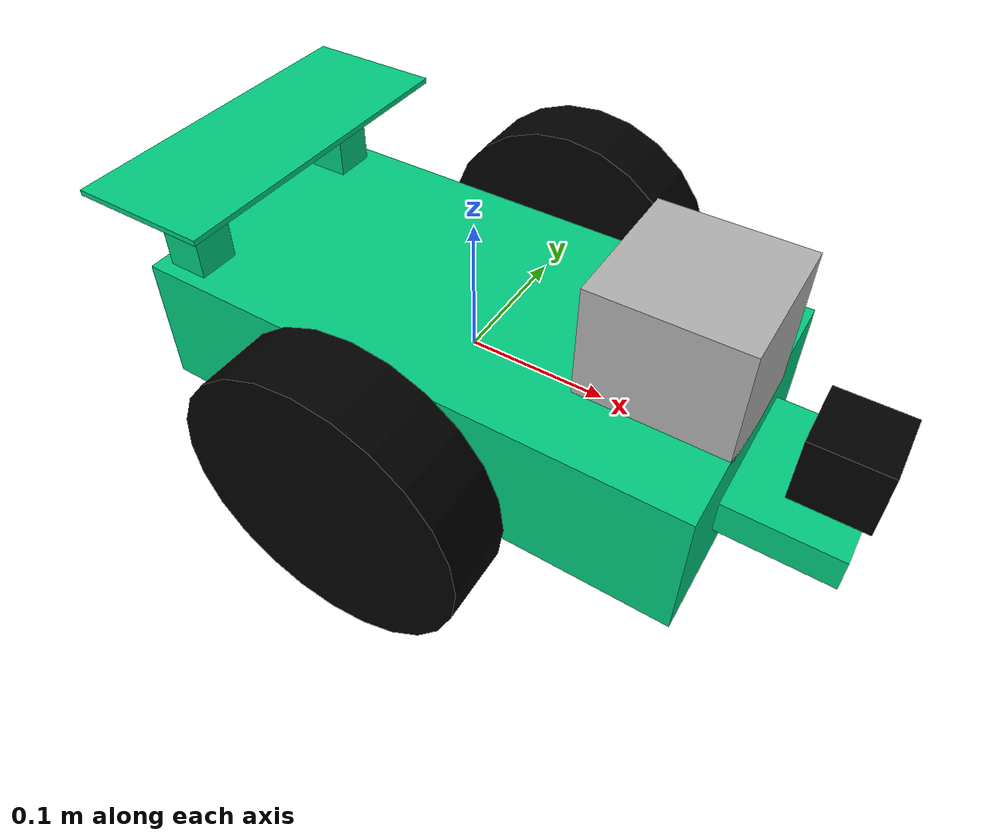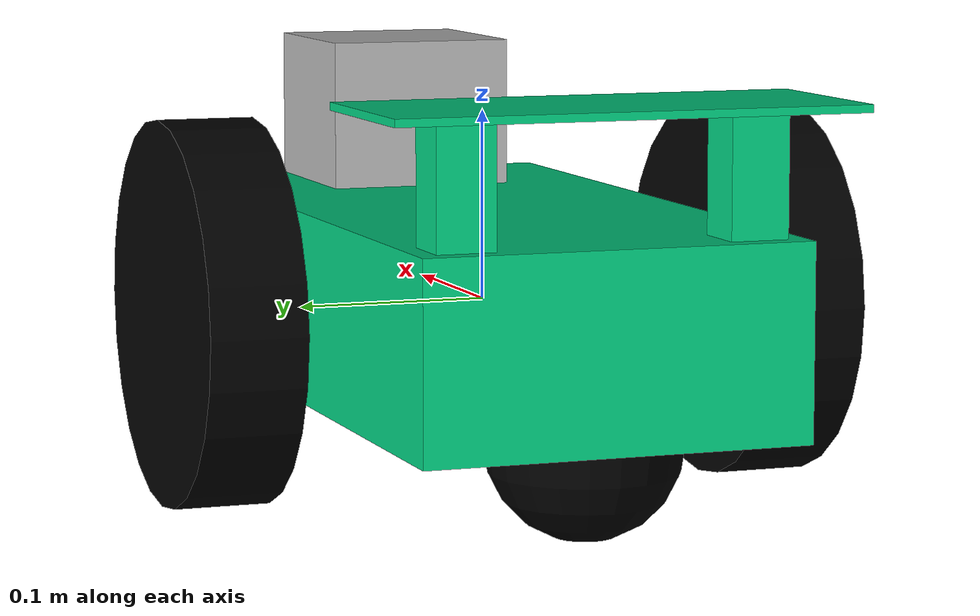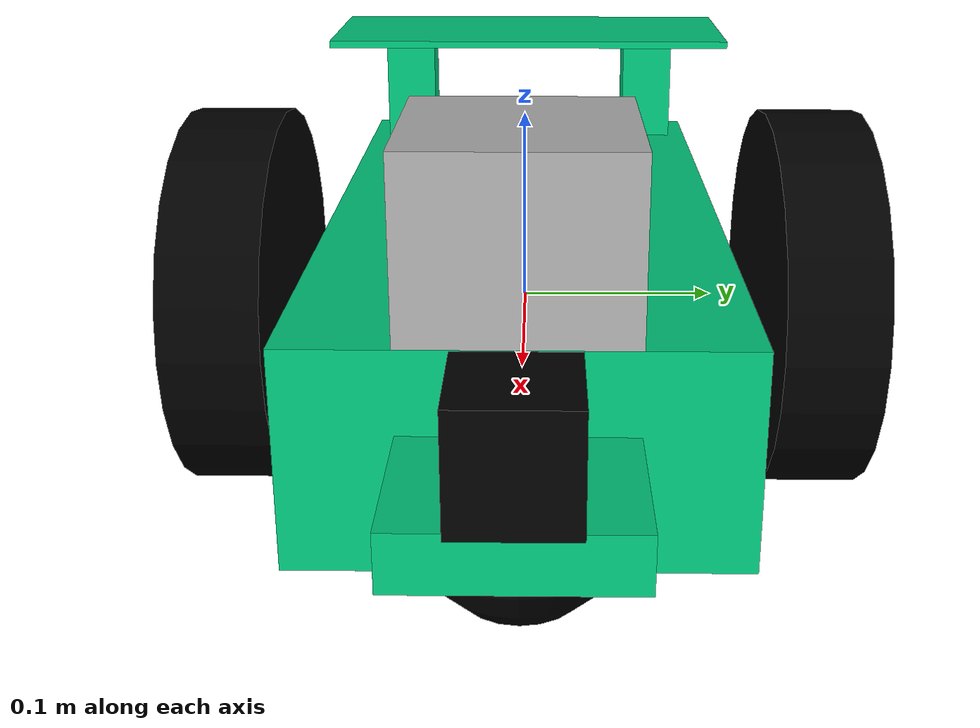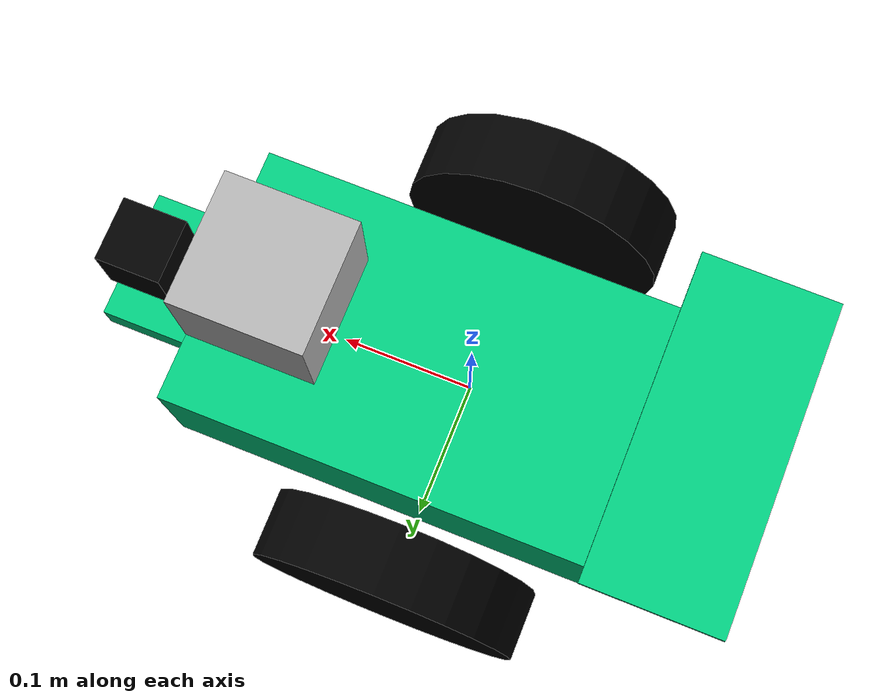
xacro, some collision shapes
<?xml version='1.0'?>

<robot name="rover" xmlns:xacro="http://www.ros.org/wiki/xacro">
  <xacro:include filename="$(find home_service_robot)/urdf/rover_plugins.gazebo" />
  <xacro:include filename="$(find home_service_robot)/urdf/rover_colors.gazebo" />
  <link name="robot_footprint"></link>

  <joint name="robot_footprint_joint" type="fixed">
    <origin xyz="0 0 0" rpy="0 0 0" />
    <parent link="robot_footprint"/>
    <child link="chassis" />
  </joint>

  <link name='chassis'>
    <pose>0 0 0.1 0 0 0</pose>

    <inertial>
      <mass value="15.0"/>
      <origin xyz="0.0 0 0" rpy=" 0 0 0"/>
      <inertia
          ixx="0.1" ixy="0" ixz="0"
          iyy="0.1" iyz="0"
          izz="0.1"
      />
    </inertial>

    <collision name='collision'>
      <origin xyz="0 0 0" rpy=" 0 0 0"/>
      <geometry>
        <box size=".4 .2 .1"/>
      </geometry>
    </collision>

    <visual name='chassis_visual'>
      <origin xyz="0 0 0" rpy=" 0 0 0"/>
      <geometry>
        <box size=".4 .2 .1"/>
      </geometry>
      <material name="greenish">
        <color rgba="0.0 0.8 0.5 1.0"/>
      </material>
    </visual>

    <collision name='back_caster_collision'>
      <origin xyz="-0.15 0 -0.05" rpy=" 0 0 0"/>
      <geometry>
        <sphere radius="0.0499"/>
      </geometry>
    </collision>

    <visual name='back_caster_visual'>
      <origin xyz="-0.15 0 -0.05" rpy=" 0 0 0"/>
      <geometry>
        <sphere radius="0.05"/>
      </geometry>
      <material name="black">
        <color rgba="0.0 0.0 0.0 1.0"/>
      </material>
    </visual>

    <collision name='front_caster_collision'>
      <origin xyz="0.15 0 -0.05" rpy=" 0 0 0"/>
      <geometry>
        <sphere radius="0.0499"/>
      </geometry>
    </collision>

    <visual name='front_caster_visual'>
      <origin xyz="0.15 0 -0.05" rpy=" 0 0 0"/>
      <geometry>
        <sphere radius="0.05"/>
      </geometry>
      <material name="black">
        <color rgba="0.0 0.0 0.0 1.0"/>
      </material>
    </visual>

  </link>

  <link name="right_wheel">

    <inertial>
      <mass value="5.0"/>
      <origin xyz="0.0 0 0" rpy=" 0 1.5707 1.5707"/>
      <inertia
          ixx="0.1" ixy="0" ixz="0"
          iyy="0.1" iyz="0"
          izz="0.1"
      />
    </inertial>

    <visual>
      <origin xyz="0 0 0" rpy="0 1.5707 1.5707"/>
      <geometry>
        <cylinder radius="0.1" length="0.05"/>
      </geometry>
      <material name="black">
        <color rgba="0.0 0.0 0.0 1.0"/>
      </material>
    </visual>

    <collision>
      <origin xyz="0 0 0" rpy="0 1.5707 1.5707"/>
      <geometry>
	      <cylinder radius="0.1" length="0.05"/>
      </geometry>
    </collision>

  </link>

  <link name="left_wheel">

    <inertial>
      <mass value="5.0"/>
      <origin xyz="0.0 0 0" rpy=" 0 1.5707 1.5707"/>
      <inertia
          ixx="0.1" ixy="0" ixz="0"
          iyy="0.1" iyz="0"
          izz="0.1"
      />
    </inertial>

    <collision>
      <origin xyz="0 0 0" rpy="0 1.5707 1.5707"/>
      <geometry>
	      <cylinder radius="0.1" length="0.05"/>
      </geometry>
    </collision>

    <visual>
      <origin xyz="0 0 0" rpy="0 1.5707 1.5707"/>
      <geometry>
	      <cylinder radius="0.1" length="0.05"/>
      </geometry>
      <material name="black">
        <color rgba="0.0 0.0 0.0 1.0"/>
      </material>
    </visual>

  </link>

  <joint type="continuous" name="right_wheel_hinge">
    <origin xyz="0 0.15 0" rpy="0 0 0"/>
    <child link="right_wheel"/>
    <parent link="chassis"/>
    <axis xyz="0 1 0" rpy="0 0 0"/>
    <limit effort="10000" velocity="1000"/>
    <dynamics damping="1.0" friction="1.0"/>
  </joint>

  <joint type="continuous" name="left_wheel_hinge">
    <origin xyz="0 -0.15 0" rpy="0 0 0"/>
    <child link="left_wheel"/>
    <parent link="chassis"/>
    <axis xyz="0 1 0" rpy="0 0 0"/>
    <limit effort="10000" velocity="1000"/>
    <dynamics damping="1.0" friction="1.0"/>
  </joint>

  <link name="camera_base_plate">
    <inertial>
      <mass value="0.5"/>
      <origin xyz="0.075 0.1 0.025" rpy=" 0 0 0.0"/>
      <inertia
          ixx="1e-6" ixy="0" ixz="0"
          iyy="1e-6" iyz="0"
          izz="1e-6"
      />
    </inertial>

    <collision>
      <origin xyz="0 0 0" rpy="0.0 0.0 0.0"/>
      <geometry>
	      <box size="0.075 0.1 0.025"/>
      </geometry>
    </collision>

    <visual>
      <origin xyz="0 0 0" rpy="0 0.0 0.0"/>
      <geometry>
	      <box size="0.075 0.1 0.025"/>
      </geometry>
      <material name="greenish">
        <color rgba="0.0 0.8 0.5 1.0"/>
      </material>
    </visual>

  </link>

  <joint type="fixed" name="camera_base_plate_joint">
    <origin xyz="0.2375 0.0 0.0 " rpy="0 0 0"/>
    <child link="camera_base_plate"/>
    <parent link="chassis"/>
    <axis xyz="0 1 0" rpy="0 0 0"/>
  </joint>

  <link name="camera">

    <inertial>
      <mass value="0.1"/>
      <origin xyz="0.05 0.05 0.05" rpy=" 0 0 0"/>
      <inertia
          ixx="1e-6" ixy="0" ixz="0"
          iyy="1e-6" iyz="0"
          izz="1e-6"
      />
    </inertial>

    <visual>
      <origin xyz="0 0 0" rpy="0 0 0"/>
      <geometry>
	       <box size="0.05 0.05 0.05"/>
      </geometry>
      <material name="black">
        <color rgba="0.0 0.0 0.0 1.0"/>
      </material>
    </visual>

    <collision>
      <origin xyz="0 0 0" rpy="0 0 0"/>
      <geometry>
        <box size="0.05 0.05 0.05"/>
      </geometry>
    </collision>

  </link>

  <joint type="fixed" name="camera_joint">
      <origin xyz="0.018 0 0.0375" rpy="0 0 0"/>
      <child link="camera"/>
      <parent link="camera_base_plate"/>
      <axis xyz="0 1 0" rpy="0 0 0"/>
      <limit effort="10000" velocity="1000"/>
      <dynamics damping="1.0" friction="1.0"/>
  </joint>

  <link name="camera_link_optical">
  </link>

  <joint name="camera_optical_joint" type="fixed">
    <origin xyz="0 0 0" rpy="-1.5707 0 -1.5707"/>
    <parent link="camera"/>
    <child link="camera_link_optical"/>
  </joint>

  <link name="hokuyo">

    <inertial>
      <mass value="1e-5"/>
      <origin xyz="0.1 0.1 0.1" rpy="0 0 0"/>
      <inertia
          ixx="1e-6" ixy="0" ixz="0"
          iyy="1e-6" iyz="0"
          izz="1e-6"
      />
    </inertial>

    <visual>
      <origin xyz="0 0 0" rpy="0 0 0"/>
      <geometry>
	<mesh filename="package://home_service_robot/meshes/hokuyo.dae"/>
      </geometry>
    </visual>-->

    <collision>
      <origin xyz="0 0 0" rpy="0 0 0"/>
      <geometry>
        <box size="0.1 0.1 0.1"/>
      </geometry>
    </collision>

  </link>

  <joint type="fixed" name="hokuyo_joint">
    <origin xyz="0.15 0 0.08" rpy="0 0 0"/>
    <child link="hokuyo"/>
    <parent link="chassis"/>
    <axis xyz="0 1 0" rpy="0 0 0"/>
    <limit effort="10000" velocity="1000"/>
    <dynamics damping="1.0" friction="1.0"/>
  </joint>

  <link name="spoiler_left_mount">
    <inertial>
      <mass value="0.5"/>
      <origin xyz="0.03 0.03 0.1" rpy=" 0 0 0.0"/>
      <inertia
          ixx="1e-6" ixy="0" ixz="0"
          iyy="1e-6" iyz="0"
          izz="1e-6"
      />
    </inertial>

    <collision>
      <origin xyz="0 0 0" rpy="0.0 0.0 0.0"/>
      <geometry>
        <box size="0.03 0.03 0.1"/>
      </geometry>
    </collision>

    <visual>
      <origin xyz="0 0 0" rpy="0 0.0 0.0"/>
      <geometry>
        <box size="0.03 0.03 0.1"/>
      </geometry>
      <material name="greenish">
        <color rgba="0.0 0.8 0.5 1.0"/>
      </material>
    </visual>

  </link>

  <link name="spoiler_right_mount">
    <inertial>
      <mass value="0.5"/>
      <origin xyz="0.03 0.03 0.1" rpy=" 0 0 0.0"/>
      <inertia
          ixx="1e-6" ixy="0" ixz="0"
          iyy="1e-6" iyz="0"
          izz="1e-6"
      />
    </inertial>

    <collision>
      <origin xyz="0 0 0" rpy="0.0 0.0 0.0"/>
      <geometry>
        <box size="0.03 0.03 0.1"/>
      </geometry>
    </collision>

    <visual>
      <origin xyz="0 0 0" rpy="0 0.0 0.0"/>
      <geometry>
        <box size="0.03 0.03 0.1"/>
      </geometry>
      <material name="greenish">
        <color rgba="0.0 0.8 0.5 1.0"/>
      </material>
    </visual>

  </link>

  <joint type="fixed" name="spoiler_left_mount_joint">
    <origin xyz="-0.175 -0.075 0.065 " rpy="0 0 0"/>
    <child link="spoiler_left_mount"/>
    <parent link="chassis"/>
    <axis xyz="0 1 0" rpy="0 0 0"/>
  </joint>

  <joint type="fixed" name="spoiler_right_mount_joint">
    <origin xyz="-0.175 0.075 0.065 " rpy="0 0 0"/>
    <child link="spoiler_right_mount"/>
    <parent link="chassis"/>
    <axis xyz="0 1 0" rpy="0 0 0"/>
  </joint>

  <link name="spoiler">
    <inertial>
      <mass value="2.0"/>
      <origin xyz="0.1 0.240 0.004" rpy=" 0 0 0.0"/>
      <inertia
          ixx="1e-3" ixy="0" ixz="0"
          iyy="1e-3" iyz="0"
          izz="1e-3"
      />
    </inertial>

    <collision>
      <origin xyz="0 0 0" rpy="0.0 0.0 0.0"/>
      <geometry>
        <box size="0.1 0.240 0.004"/>
      </geometry>
    </collision>

    <visual>
      <origin xyz="0 0 0" rpy="0 0.0 0.0"/>
      <geometry>
        <box size="0.1 0.240 0.004"/>
      </geometry>
      <material name="greenish">
        <color rgba="0.0 0.8 0.5 1.0"/>
      </material>
    </visual>

  </link>

  <joint type="fixed" name="spoiler_joint">
    <origin xyz="-0.17 0.0 0.115 " rpy="0 0 0"/>
    <child link="spoiler"/>
    <parent link="chassis"/>
    <axis xyz="0 1 0" rpy="0 0 0"/>
  </joint>

</robot>
